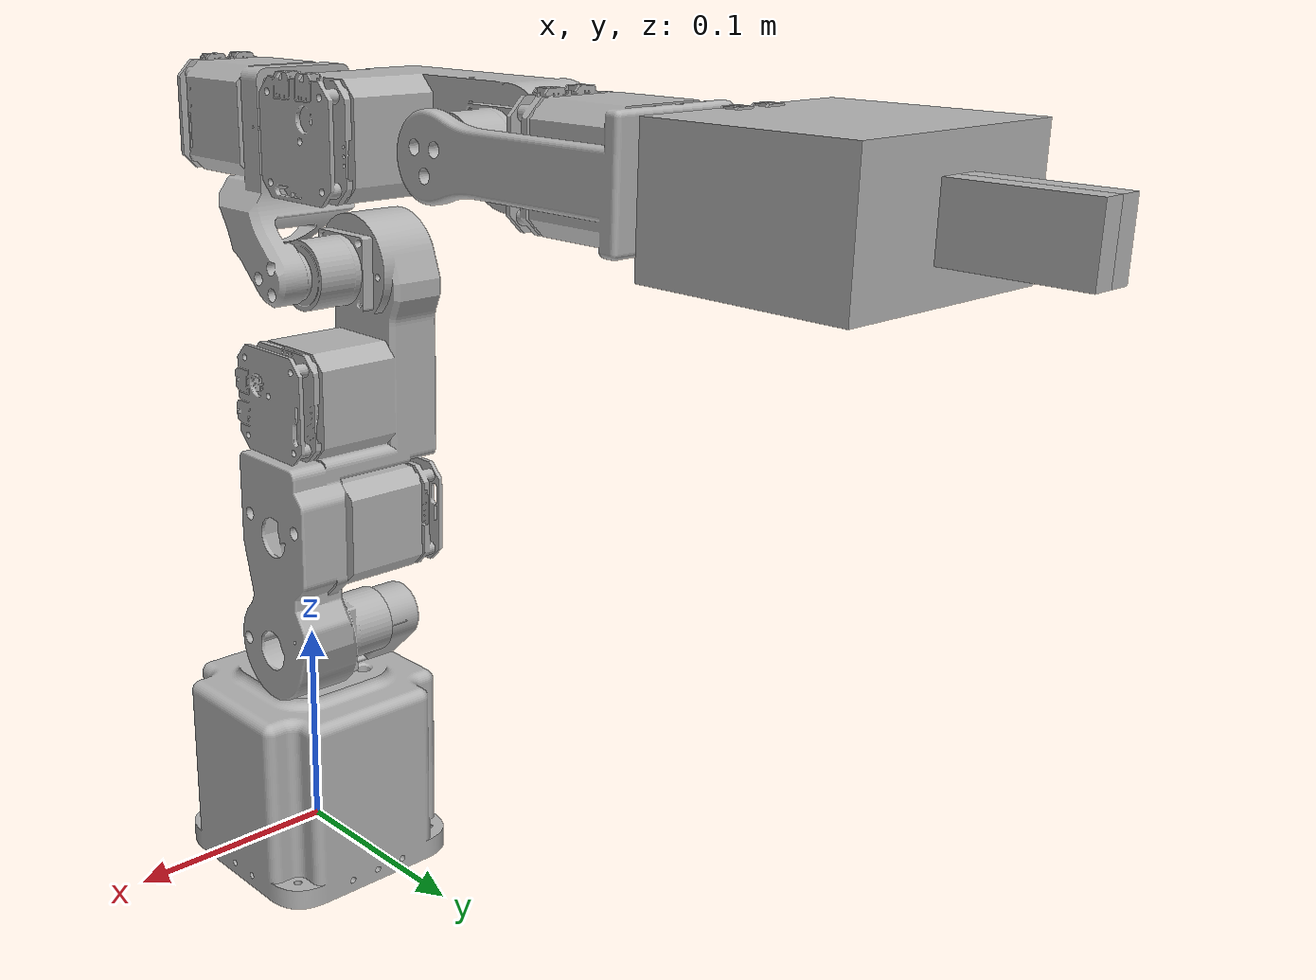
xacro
<?xml version="1.0" ?>
<robot name="dummy2_urdf" xmlns:xacro="http://www.ros.org/wiki/xacro">

<xacro:include filename="$(find dummy2_urdf_description)/urdf/materials.xacro" />
<xacro:include filename="$(find dummy2_urdf_description)/urdf/dummy2_urdf.trans" />
<xacro:include filename="$(find dummy2_urdf_description)/urdf/dummy2_urdf.gazebo" />

<!-- 手指伸出的方向：URDF 里手爪挂在 link7 的 +y 方向 -->
<xacro:property name="hand_axis" value="y"/>

<xacro:property name="gripper_wrist_to_tip_m" value="0.130"/>
<xacro:property name="gripper_body_y_m" value="0.080"/>
<xacro:property name="gripper_finger_y_m" value="0.050"/>
<xacro:property name="gripper_tip_to_centre_m" value="0.0175"/>
<xacro:property name="gripper_open_gap_m" value="0.055"/>
<xacro:property name="gripper_finger_thick_m" value="0.008"/>
<xacro:property name="gripper_finger_width_m" value="0.025"/>
<xacro:property name="gripper_body_x_m" value="0.090"/>
<xacro:property name="gripper_body_z_m" value="0.050"/>
<!-- 半行程 = 一指从全闭到全开走多远 -->
<xacro:property name="gripper_finger_travel_m" value="${gripper_open_gap_m/2}"/>
<xacro:property name="gripper_seam_gap_m" value="0.001"/>
<!-- link7 端面 -> 两指夹持中心（gripper_tcp 就放在这里） -->
<xacro:property name="tcp_offset_y" value="${gripper_wrist_to_tip_m - gripper_tip_to_centre_m}"/>

<!-- 相机的安装参数（外置支架，eye-to-hand）定义在文件末尾的相机段落里，
     因为那里有较长的说明。用 grep 搜 camera_offset 可以找到。 -->

<link name="world"/>

<joint name="world_to_base" type="fixed">
  <origin xyz="0 0 0" rpy="0 0 0"/>
  <parent link="world"/>
  <child link="base_link"/>
</joint>

<link name="base_link">
  <inertial>
    <origin xyz="-2.0924404922447642e-07 0.0002265177622702009 0.038857658386839265" rpy="0 0 0"/>
    <mass value="3.5330582052606796"/>
    <inertia ixx="0.006118" iyy="0.006527" izz="0.007083" ixy="-0.0" iyz="-3.1e-05" ixz="-0.0"/>
  </inertial>
  <visual>
    <origin xyz="0 0 0" rpy="0 0 0"/>
    <geometry>
      <mesh filename="file://$(find dummy2_urdf_description)/meshes/base_link.stl" scale="0.001 0.001 0.001"/>
    </geometry>
    <material name="silver"/>
  </visual>
  <collision>
    <origin xyz="0 0 0" rpy="0 0 0"/>
    <geometry>
      <mesh filename="file://$(find dummy2_urdf_description)/meshes/base_link.stl" scale="0.001 0.001 0.001"/>
    </geometry>
  </collision>
</link>

<link name="link1_v1_1">
  <inertial>
    <origin xyz="-0.0056980560460294935 0.0064861638164701 0.019357188251092616" rpy="0 0 0"/>
    <mass value="0.4200298104778203"/>
    <inertia ixx="0.000188" iyy="0.000156" izz="0.000263" ixy="6.2e-05" iyz="-4.3e-05" ixz="2.7e-05"/>
  </inertial>
  <visual>
    <origin xyz="0.0 0.0 -0.0805" rpy="0 0 0"/>
    <geometry>
      <mesh filename="file://$(find dummy2_urdf_description)/meshes/link1_v1_1.stl" scale="0.001 0.001 0.001"/>
    </geometry>
    <material name="silver"/>
  </visual>
  <collision>
    <origin xyz="0.0 0.0 -0.0805" rpy="0 0 0"/>
    <geometry>
      <mesh filename="file://$(find dummy2_urdf_description)/meshes/link1_v1_1.stl" scale="0.001 0.001 0.001"/>
    </geometry>
  </collision>
</link>

<link name="link2_3_v4_1">
  <inertial>
    <origin xyz="0.01784442516054535 0.001984148554351424 0.08366314329154671" rpy="0 0 0"/>
    <mass value="1.8966297326812738"/>
    <inertia ixx="0.00634" iyy="0.006744" izz="0.001194" ixy="-4e-06" iyz="6.4e-05" ixz="0.000771"/>
  </inertial>
  <visual>
    <origin xyz="0.011639 -0.034477 -0.1155" rpy="0 0 0"/>
    <geometry>
      <mesh filename="file://$(find dummy2_urdf_description)/meshes/link2_3_v4_1.stl" scale="0.001 0.001 0.001"/>
    </geometry>
    <material name="silver"/>
  </visual>
  <collision>
    <origin xyz="0.011639 -0.034477 -0.1155" rpy="0 0 0"/>
    <geometry>
      <mesh filename="file://$(find dummy2_urdf_description)/meshes/link2_3_v4_1.stl" scale="0.001 0.001 0.001"/>
    </geometry>
  </collision>
</link>

<link name="link4_v3_1">
  <inertial>
    <origin xyz="-0.010734927861478562 -0.02899910919329468 0.04907873909557703" rpy="0 0 0"/>
    <mass value="0.9123222504571403"/>
    <inertia ixx="0.00082" iyy="0.000695" izz="0.00053" ixy="-4.2e-05" iyz="0.000139" ixz="8.7e-05"/>
  </inertial>
  <visual>
    <origin xyz="-0.023511 -0.034477 -0.2835" rpy="0 0 0"/>
    <geometry>
      <mesh filename="file://$(find dummy2_urdf_description)/meshes/link4_v3_1.stl" scale="0.001 0.001 0.001"/>
    </geometry>
    <material name="silver"/>
  </visual>
  <collision>
    <origin xyz="-0.023511 -0.034477 -0.2835" rpy="0 0 0"/>
    <geometry>
      <mesh filename="file://$(find dummy2_urdf_description)/meshes/link4_v3_1.stl" scale="0.001 0.001 0.001"/>
    </geometry>
  </collision>
</link>

<link name="link5_v3_1">
  <inertial>
    <origin xyz="-0.005062328590247776 0.05998132886165681 0.0006226400248255382" rpy="0 0 0"/>
    <mass value="1.0415582650622635"/>
    <inertia ixx="0.001817" iyy="0.000592" izz="0.002009" ixy="0.000108" iyz="-1.2e-05" ixz="8e-06"/>
  </inertial>
  <visual>
    <origin xyz="-0.010349 -0.03602 -0.345967" rpy="0 0 0"/>
    <geometry>
      <mesh filename="file://$(find dummy2_urdf_description)/meshes/link5_v3_1.stl" scale="0.001 0.001 0.001"/>
    </geometry>
    <material name="silver"/>
  </visual>
  <collision>
    <origin xyz="-0.010349 -0.03602 -0.345967" rpy="0 0 0"/>
    <geometry>
      <mesh filename="file://$(find dummy2_urdf_description)/meshes/link5_v3_1.stl" scale="0.001 0.001 0.001"/>
    </geometry>
  </collision>
</link>

<link name="link6_v3_1">
  <inertial>
    <origin xyz="-0.015134812773935778 0.07204733917419315 5.247838804928184e-05" rpy="0 0 0"/>
    <mass value="0.792974216910335"/>
    <inertia ixx="0.000883" iyy="0.000353" izz="0.000975" ixy="0.000146" iyz="1e-06" ixz="-0.0"/>
  </inertial>
  <visual>
    <origin xyz="-0.033149 -0.14602 -0.345967" rpy="0 0 0"/>
    <geometry>
      <mesh filename="file://$(find dummy2_urdf_description)/meshes/link6_v3_1.stl" scale="0.001 0.001 0.001"/>
    </geometry>
    <material name="silver"/>
  </visual>
  <collision>
    <origin xyz="-0.033149 -0.14602 -0.345967" rpy="0 0 0"/>
    <geometry>
      <mesh filename="file://$(find dummy2_urdf_description)/meshes/link6_v3_1.stl" scale="0.001 0.001 0.001"/>
    </geometry>
  </collision>
</link>

<link name="link7_v1_1">
  <inertial>
    <origin xyz="-0.00010370692516778121 0.030002778403636243 0.0001258592869731734" rpy="0 0 0"/>
    <mass value="0.35021823126723256"/>
    <inertia ixx="0.000175" iyy="0.000154" izz="0.000176" ixy="-1e-06" iyz="1e-06" ixz="-0.0"/>
  </inertial>
  <visual>
    <origin xyz="-0.012149 -0.26452 -0.345967" rpy="0 0 0"/>
    <geometry>
      <mesh filename="file://$(find dummy2_urdf_description)/meshes/link7_v1_1.stl" scale="0.001 0.001 0.001"/>
    </geometry>
    <material name="silver"/>
  </visual>
  <collision>
    <origin xyz="-0.012149 -0.26452 -0.345967" rpy="0 0 0"/>
    <geometry>
      <mesh filename="file://$(find dummy2_urdf_description)/meshes/link7_v1_1.stl" scale="0.001 0.001 0.001"/>
    </geometry>
  </collision>
</link>

<link name="dummy_hand_v1_1">
  <inertial>
    <origin xyz="0.0002308021928914654 0.0041804387610880345 2.4830506925810347e-05" rpy="0 0 0"/>
    <mass value="0.16020132187330405"/>
    <inertia ixx="1.6e-05" iyy="0.000181" izz="0.000168" ixy="0.0" iyz="-0.0" ixz="-5e-06"/>
  </inertial>
  <!-- 手掌/舵机本体：用实测尺寸的盒体，不用原作者网格（见文件上方 A1 注释）。
       本体从腕部往指尖方向占 80 mm，所以盒心在 hand 坐标系
       y = 80/2 - 52.312 + 1 = -11.3 mm —— 那个 +1 mm 是 gripper_seam_gap_m，
       把背面和 link6 的正面（同一平面）分开，否则面接触被判成自碰撞。 -->
  <visual>
    <origin xyz="0 ${gripper_body_y_m/2 - 0.052312 + gripper_seam_gap_m} 0" rpy="0 0 0"/>
    <geometry>
      <box size="${gripper_body_x_m} ${gripper_body_y_m} ${gripper_body_z_m}"/>
    </geometry>
    <material name="silver"/>
  </visual>
  <collision>
    <origin xyz="0 ${gripper_body_y_m/2 - 0.052312 + gripper_seam_gap_m} 0" rpy="0 0 0"/>
    <geometry>
      <box size="${gripper_body_x_m} ${gripper_body_y_m} ${gripper_body_z_m}"/>
    </geometry>
  </collision>
</link>

<link name="dummy_leftfinger_v1_1">
  <inertial>
    <origin xyz="0.018039556958137283 0.02262433555604698 0.007487610379991516" rpy="0 0 0"/>
    <mass value="0.0823609512502398"/>
    <inertia ixx="2.7e-05" iyy="2.2e-05" izz="4.2e-05" ixy="7e-06" iyz="-3e-06" ixz="3e-06"/>
  </inertial>
  <!-- 指板：盒心就是 link 原点（关节 origin 已经把它摆到正确位置）。
       x 是板厚（沿开合方向）、y 是指板长度、z 是宽度。 -->
  <visual>
    <origin xyz="0 0 0" rpy="0 0 0"/>
    <geometry>
      <box size="${gripper_finger_thick_m} ${gripper_finger_y_m} ${gripper_finger_width_m}"/>
    </geometry>
    <material name="silver"/>
  </visual>
  <collision>
    <origin xyz="0 0 0" rpy="0 0 0"/>
    <geometry>
      <box size="${gripper_finger_thick_m} ${gripper_finger_y_m} ${gripper_finger_width_m}"/>
    </geometry>
  </collision>
</link>

<link name="dummy_rightfiger_v1_1">
  <inertial>
    <origin xyz="-0.01803918941317663 0.02262433555604687 -0.00748696328708276" rpy="0 0 0"/>
    <mass value="0.08236095125024051"/>
    <inertia ixx="2.7e-05" iyy="2.2e-05" izz="4.2e-05" ixy="-7e-06" iyz="3e-06" ixz="3e-06"/>
  </inertial>
  <!-- 同 dummy_leftfinger_v1_1。 -->
  <visual>
    <origin xyz="0 0 0" rpy="0 0 0"/>
    <geometry>
      <box size="${gripper_finger_thick_m} ${gripper_finger_y_m} ${gripper_finger_width_m}"/>
    </geometry>
    <material name="silver"/>
  </visual>
  <collision>
    <origin xyz="0 0 0" rpy="0 0 0"/>
    <geometry>
      <box size="${gripper_finger_thick_m} ${gripper_finger_y_m} ${gripper_finger_width_m}"/>
    </geometry>
  </collision>
</link>

<joint name="dummy2_joint1" type="revolute">
  <origin xyz="0.0 0.0 0.0805" rpy="0 0 0"/>
  <parent link="base_link"/>
  <child link="link1_v1_1"/>
  <axis xyz="0.0 -0.0 -1.0"/>
  <limit upper="2.879793" lower="-2.879793" effort="100" velocity="100"/>
</joint>

<joint name="dummy2_joint2" type="revolute">
  <origin xyz="-0.011639 0.034477 0.035" rpy="0 0 0"/>
  <parent link="link1_v1_1"/>
  <child link="link2_3_v4_1"/>
  <axis xyz="1.0 0.0 0.0"/>
  <limit upper="1.308997" lower="-1.570796" effort="100" velocity="100"/>
</joint>

<joint name="dummy2_joint3" type="revolute">
  <origin xyz="0.03515 0.0 0.168" rpy="0 0 0"/>
  <parent link="link2_3_v4_1"/>
  <child link="link4_v3_1"/>
  <axis xyz="1.0 -0.0 0.0"/>
  <limit upper="0.785398" lower="-1.570796" effort="100" velocity="100"/>
</joint>

<joint name="dummy2_joint4" type="revolute">
  <origin xyz="-0.013162 0.001543 0.062467" rpy="0 0 0"/>
  <parent link="link4_v3_1"/>
  <child link="link5_v3_1"/>
  <axis xyz="-0.0 1.0 0.0"/>
  <limit upper="2.879793" lower="-3.141593" effort="100" velocity="100"/>
</joint>

<joint name="dummy2_joint5" type="revolute">
  <origin xyz="0.0228 0.11 0.0" rpy="0 0 0"/>
  <parent link="link5_v3_1"/>
  <child link="link6_v3_1"/>
  <axis xyz="1.0 0.0 0.0"/>
  <limit upper="1.570796" lower="-1.570796" effort="100" velocity="100"/>
</joint>

<joint name="dummy2_joint6" type="revolute">
  <origin xyz="-0.021 0.1185 0.0" rpy="0 0 0"/>
  <parent link="link6_v3_1"/>
  <child link="link7_v1_1"/>
  <axis xyz="0.0 -1.0 -0.0"/>
  <limit upper="3.141593" lower="-3.141593" effort="100" velocity="100"/>
</joint>

<joint name="dummy2_hand_joint" type="fixed">
  <origin xyz="0.0 0.052312 0.0" rpy="0 0 0"/>
  <parent link="link7_v1_1"/>
  <child link="dummy_hand_v1_1"/>
</joint>

<joint name="dummy2_finger_joint1" type="prismatic">
  <origin xyz="${-gripper_finger_thick_m/2} ${gripper_body_y_m + gripper_finger_y_m/2 - 0.052312} 0" rpy="0 0 0"/>
  <parent link="dummy_hand_v1_1"/>
  <child link="dummy_leftfinger_v1_1"/>
  <axis xyz="-1 0 0"/>
  <!--
    行程 27.5 mm = 最大开口 55 mm 的一半，q=0 时两指内侧面刚好接触（全闭），
    q=27.5 mm 时开口 55 mm（全开）。这个行程与整个夹爪几何都按实测重建过。
    SRDF 里 gripper 组的 open/closed 组状态用的是同一个数，改这里要一起改。
  -->
  <limit upper="${gripper_finger_travel_m}" lower="0.0" effort="100" velocity="100"/>
</joint>

<joint name="dummy2_finger_joint2" type="prismatic">
  <origin xyz="${gripper_finger_thick_m/2} ${gripper_body_y_m + gripper_finger_y_m/2 - 0.052312} 0" rpy="0 0 0"/>
  <parent link="dummy_hand_v1_1"/>
  <child link="dummy_rightfiger_v1_1"/>
  <axis xyz="1 0 0"/>
  <!-- 同 dummy2_finger_joint1，两指沿相反方向同步开合。 -->
  <limit upper="${gripper_finger_travel_m}" lower="0.0" effort="100" velocity="100"/>
</joint>

<!-- tool0：末端法兰坐标，与手爪根部重合，便于标定和参考项目对齐 -->
<link name="tool0"/>

<joint name="tool0_joint" type="fixed">
  <origin xyz="0 0.052312 0" rpy="0 0 0"/>
  <parent link="link7_v1_1"/>
  <child link="tool0"/>
</joint>

<!-- gripper_tcp：抓取参考点。MoveIt 的规划链终点用这个，不用 link7。
     偏移量必须实测：从手爪根部到两指指尖前端的中点。 -->
<link name="gripper_tcp"/>

<joint name="gripper_tcp_joint" type="fixed">
  <origin xyz="0 ${tcp_offset_y - 0.052312} 0" rpy="0 0 0"/>
  <parent link="tool0"/>
  <child link="gripper_tcp"/>
</joint>

<xacro:property name="camera_offset_x" value="-0.302"/>
<xacro:property name="camera_offset_y" value="0.317"/>
<xacro:property name="camera_offset_z" value="0.097"/>

<xacro:property name="camera_mount_roll_deg" value="0"/>
<xacro:property name="camera_mount_pitch_deg" value="4.44"/>
<xacro:property name="camera_mount_yaw_deg" value="-1.32"/>

<link name="camera_link"/>

<joint name="camera_link_joint" type="fixed">
  <origin xyz="${camera_offset_x} ${camera_offset_y} ${camera_offset_z}"
          rpy="${camera_mount_roll_deg * pi / 180} ${camera_mount_pitch_deg * pi / 180} ${camera_mount_yaw_deg * pi / 180}"/>
  <parent link="base_link"/>
  <child link="camera_link"/>
</joint>

<link name="usb_camera_optical_frame"/>

<joint name="usb_camera_optical_joint" type="fixed">
  <origin xyz="0 0 0" rpy="-1.5707963 0 -1.5707963"/>
  <parent link="camera_link"/>
  <child link="usb_camera_optical_frame"/>
</joint>

</robot>

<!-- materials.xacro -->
<robot name="dummy2_urdf" xmlns:xacro="http://www.ros.org/wiki/xacro" >

<material name="silver">
  <color rgba="0.700 0.700 0.700 1.000"/>
</material>

</robot>

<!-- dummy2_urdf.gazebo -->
<robot name="dummy2_urdf" xmlns:xacro="http://www.ros.org/wiki/xacro" >

<xacro:property name="body_color" value="Gazebo/Silver" />

<gazebo>
  <plugin name="control" filename="libgazebo_ros_control.so"/>
</gazebo>
<gazebo reference="base_link">
  <material>${body_color}</material>
  <mu1>0.2</mu1>
  <mu2>0.2</mu2>
  <self_collide>true</self_collide>
  <gravity>true</gravity>
</gazebo>

<gazebo reference="link1_v1_1">
  <material>${body_color}</material>
  <mu1>0.2</mu1>
  <mu2>0.2</mu2>
  <self_collide>true</self_collide>
</gazebo>

<gazebo reference="link2_3_v4_1">
  <material>${body_color}</material>
  <mu1>0.2</mu1>
  <mu2>0.2</mu2>
  <self_collide>true</self_collide>
</gazebo>

<gazebo reference="link4_v3_1">
  <material>${body_color}</material>
  <mu1>0.2</mu1>
  <mu2>0.2</mu2>
  <self_collide>true</self_collide>
</gazebo>

<gazebo reference="link5_v3_1">
  <material>${body_color}</material>
  <mu1>0.2</mu1>
  <mu2>0.2</mu2>
  <self_collide>true</self_collide>
</gazebo>

<gazebo reference="link6_v3_1">
  <material>${body_color}</material>
  <mu1>0.2</mu1>
  <mu2>0.2</mu2>
  <self_collide>true</self_collide>
</gazebo>

<gazebo reference="link7_v1_1">
  <material>${body_color}</material>
  <mu1>0.2</mu1>
  <mu2>0.2</mu2>
  <self_collide>true</self_collide>
</gazebo>

<gazebo reference="dummy_hand_v1_1">
  <material>${body_color}</material>
  <mu1>0.2</mu1>
  <mu2>0.2</mu2>
  <self_collide>true</self_collide>
</gazebo>

<gazebo reference="dummy_leftfinger_v1_1">
  <material>${body_color}</material>
  <mu1>0.2</mu1>
  <mu2>0.2</mu2>
  <self_collide>true</self_collide>
</gazebo>

<gazebo reference="dummy_rightfiger_v1_1">
  <material>${body_color}</material>
  <mu1>0.2</mu1>
  <mu2>0.2</mu2>
  <self_collide>true</self_collide>
</gazebo>

</robot>
